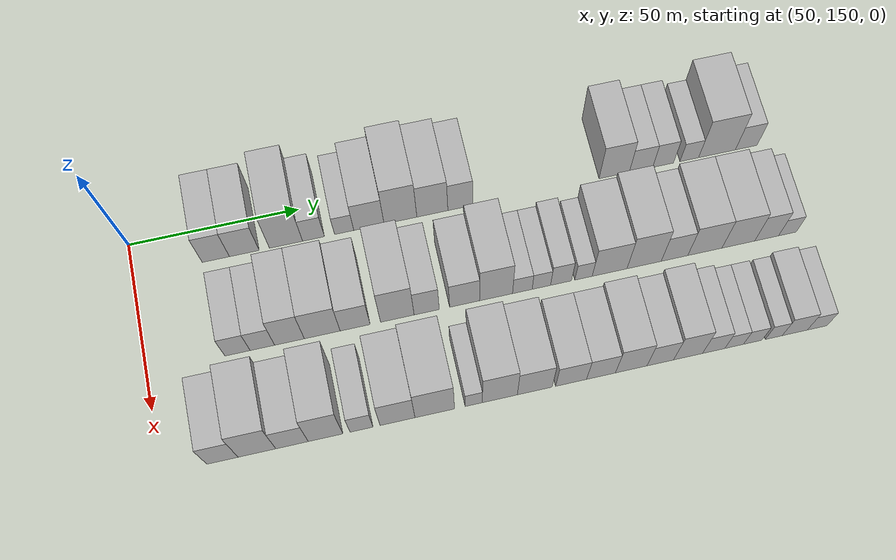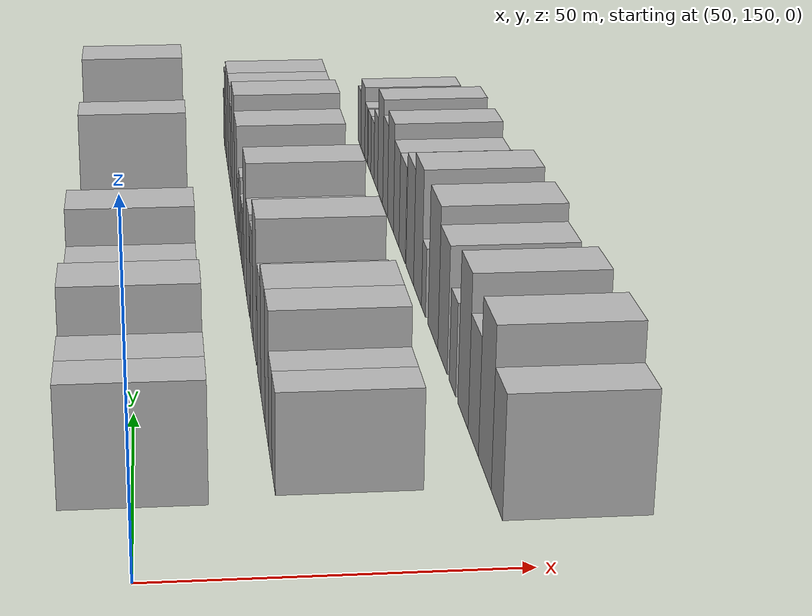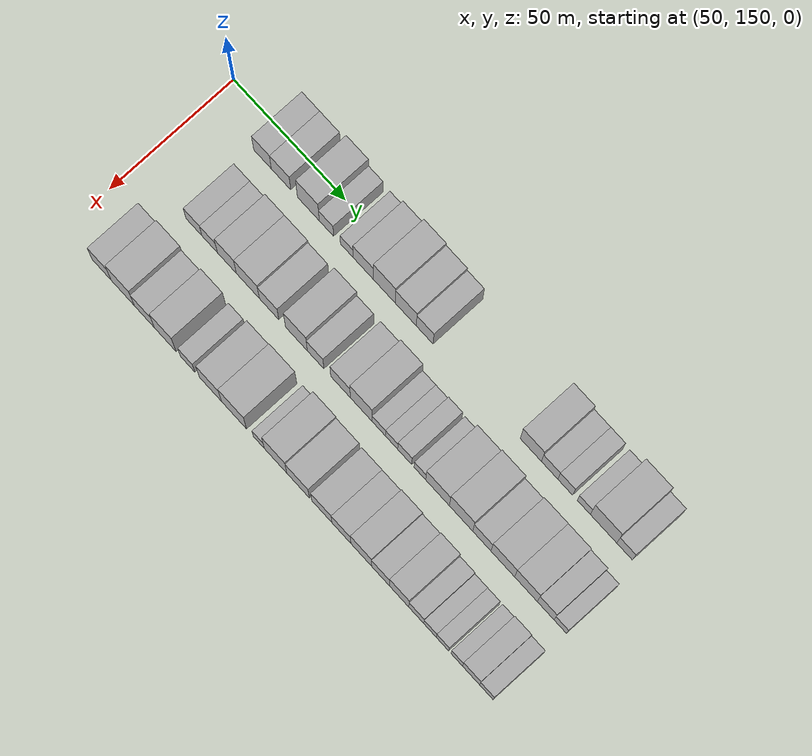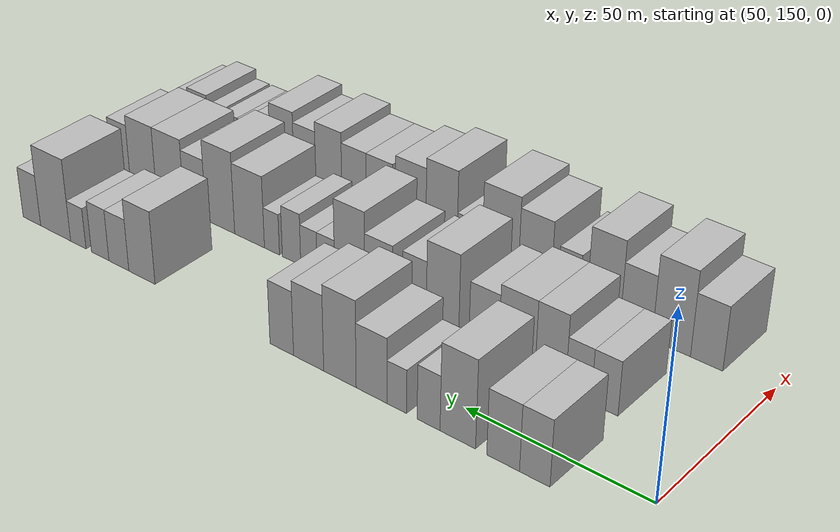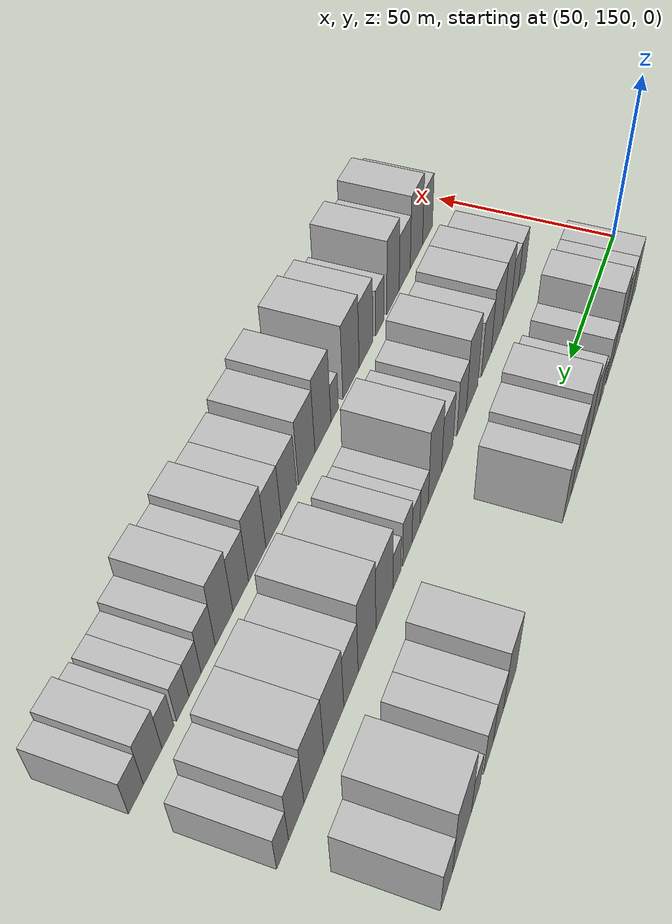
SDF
<sdf version="1.6">
 <world name="default">
  <model name="building_55">
   <static>1</static>
   <pose>50.0000 173.9923 0 0.000000 0.000000 0.000000</pose>
   <link name="link">
    <pose>0 0 9.00 0 0 0</pose>
    <collision name="collision"><geometry><box><size>20.0000 7.9048 18.0000</size></box></geometry></collision>
    <visual name="visual">
     <cast_shadows>0</cast_shadows>
     <geometry><box><size>20.0000 7.9048 18.0000</size></box></geometry>
     <material>
      <script>
       <uri>model://HANNAS_wall/materials/scripts</uri>
       <uri>model://HANNAS_wall/materials/textures</uri>
       <name>vrc/HANNAS_wall</name>
      </script>
     </material>
    </visual>
   </link>
  </model>
  <model name="building_56">
   <static>1</static>
   <pose>50.0000 182.2868 0 0.000000 0.000000 0.000000</pose>
   <link name="link">
    <pose>0 0 9.00 0 0 0</pose>
    <collision name="collision"><geometry><box><size>20.0000 8.6842 18.0000</size></box></geometry></collision>
    <visual name="visual">
     <cast_shadows>0</cast_shadows>
     <geometry><box><size>20.0000 8.6842 18.0000</size></box></geometry>
     <material>
      <script>
       <uri>model://HANNAS_wall/materials/scripts</uri>
       <uri>model://HANNAS_wall/materials/textures</uri>
       <name>vrc/HANNAS_wall</name>
      </script>
     </material>
    </visual>
   </link>
  </model>
  <model name="building_57">
   <static>1</static>
   <pose>50.0000 194.4959 0 0.000000 0.000000 0.000000</pose>
   <link name="link">
    <pose>0 0 12.00 0 0 0</pose>
    <collision name="collision"><geometry><box><size>20.0000 9.7340 24.0000</size></box></geometry></collision>
    <visual name="visual">
     <cast_shadows>0</cast_shadows>
     <geometry><box><size>20.0000 9.7340 24.0000</size></box></geometry>
     <material>
      <script>
       <uri>model://HANNAS_wall/materials/scripts</uri>
       <uri>model://HANNAS_wall/materials/textures</uri>
       <name>vrc/HANNAS_wall</name>
      </script>
     </material>
    </visual>
   </link>
  </model>
  <model name="building_58">
   <static>1</static>
   <pose>50.0000 202.5666 0 0.000000 0.000000 0.000000</pose>
   <link name="link">
    <pose>0 0 7.50 0 0 0</pose>
    <collision name="collision"><geometry><box><size>20.0000 6.4074 15.0000</size></box></geometry></collision>
    <visual name="visual">
     <cast_shadows>0</cast_shadows>
     <geometry><box><size>20.0000 6.4074 15.0000</size></box></geometry>
     <material>
      <script>
       <uri>model://HANNAS_wall/materials/scripts</uri>
       <uri>model://HANNAS_wall/materials/textures</uri>
       <name>vrc/HANNAS_wall</name>
      </script>
     </material>
    </visual>
   </link>
  </model>
  <model name="building_59">
   <static>1</static>
   <pose>50.0000 211.6004 0 0.000000 0.000000 0.000000</pose>
   <link name="link">
    <pose>0 0 6.00 0 0 0</pose>
    <collision name="collision"><geometry><box><size>20.0000 5.6602 12.0000</size></box></geometry></collision>
    <visual name="visual">
     <cast_shadows>0</cast_shadows>
     <geometry><box><size>20.0000 5.6602 12.0000</size></box></geometry>
     <material>
      <script>
       <uri>model://HANNAS_wall/materials/scripts</uri>
       <uri>model://HANNAS_wall/materials/textures</uri>
       <name>vrc/HANNAS_wall</name>
      </script>
     </material>
    </visual>
   </link>
  </model>
  <model name="building_60">
   <static>1</static>
   <pose>50.0000 218.9166 0 0.000000 0.000000 0.000000</pose>
   <link name="link">
    <pose>0 0 9.00 0 0 0</pose>
    <collision name="collision"><geometry><box><size>20.0000 8.9720 18.0000</size></box></geometry></collision>
    <visual name="visual">
     <cast_shadows>0</cast_shadows>
     <geometry><box><size>20.0000 8.9720 18.0000</size></box></geometry>
     <material>
      <script>
       <uri>model://HANNAS_wall/materials/scripts</uri>
       <uri>model://HANNAS_wall/materials/textures</uri>
       <name>vrc/HANNAS_wall</name>
      </script>
     </material>
    </visual>
   </link>
  </model>
  <model name="building_61">
   <static>1</static>
   <pose>50.0000 228.2764 0 0.000000 0.000000 0.000000</pose>
   <link name="link">
    <pose>0 0 12.00 0 0 0</pose>
    <collision name="collision"><geometry><box><size>20.0000 9.7477 24.0000</size></box></geometry></collision>
    <visual name="visual">
     <cast_shadows>0</cast_shadows>
     <geometry><box><size>20.0000 9.7477 24.0000</size></box></geometry>
     <material>
      <script>
       <uri>model://HANNAS_wall/materials/scripts</uri>
       <uri>model://HANNAS_wall/materials/textures</uri>
       <name>vrc/HANNAS_wall</name>
      </script>
     </material>
    </visual>
   </link>
  </model>
  <model name="building_62">
   <static>1</static>
   <pose>50.0000 237.7751 0 0.000000 0.000000 0.000000</pose>
   <link name="link">
    <pose>0 0 10.50 0 0 0</pose>
    <collision name="collision"><geometry><box><size>20.0000 9.2495 21.0000</size></box></geometry></collision>
    <visual name="visual">
     <cast_shadows>0</cast_shadows>
     <geometry><box><size>20.0000 9.2495 21.0000</size></box></geometry>
     <material>
      <script>
       <uri>model://HANNAS_wall/materials/scripts</uri>
       <uri>model://HANNAS_wall/materials/textures</uri>
       <name>vrc/HANNAS_wall</name>
      </script>
     </material>
    </visual>
   </link>
  </model>
  <model name="building_63">
   <static>1</static>
   <pose>50.0000 246.1008 0 0.000000 0.000000 0.000000</pose>
   <link name="link">
    <pose>0 0 9.00 0 0 0</pose>
    <collision name="collision"><geometry><box><size>20.0000 7.4020 18.0000</size></box></geometry></collision>
    <visual name="visual">
     <cast_shadows>0</cast_shadows>
     <geometry><box><size>20.0000 7.4020 18.0000</size></box></geometry>
     <material>
      <script>
       <uri>model://HANNAS_wall/materials/scripts</uri>
       <uri>model://HANNAS_wall/materials/textures</uri>
       <name>vrc/HANNAS_wall</name>
      </script>
     </material>
    </visual>
   </link>
  </model>
  <model name="building_64">
   <static>1</static>
   <pose>50.0000 292.6610 0 0.000000 0.000000 0.000000</pose>
   <link name="link">
    <pose>0 0 10.50 0 0 0</pose>
    <collision name="collision"><geometry><box><size>20.0000 9.2395 21.0000</size></box></geometry></collision>
    <visual name="visual">
     <cast_shadows>0</cast_shadows>
     <geometry><box><size>20.0000 9.2395 21.0000</size></box></geometry>
     <material>
      <script>
       <uri>model://HANNAS_wall/materials/scripts</uri>
       <uri>model://HANNAS_wall/materials/textures</uri>
       <name>vrc/HANNAS_wall</name>
      </script>
     </material>
    </visual>
   </link>
  </model>
  <model name="building_65">
   <static>1</static>
   <pose>50.0000 300.8551 0 0.000000 0.000000 0.000000</pose>
   <link name="link">
    <pose>0 0 7.50 0 0 0</pose>
    <collision name="collision"><geometry><box><size>20.0000 7.1488 15.0000</size></box></geometry></collision>
    <visual name="visual">
     <cast_shadows>0</cast_shadows>
     <geometry><box><size>20.0000 7.1488 15.0000</size></box></geometry>
     <material>
      <script>
       <uri>model://HANNAS_wall/materials/scripts</uri>
       <uri>model://HANNAS_wall/materials/textures</uri>
       <name>vrc/HANNAS_wall</name>
      </script>
     </material>
    </visual>
   </link>
  </model>
  <model name="building_66">
   <static>1</static>
   <pose>50.0000 307.6309 0 0.000000 0.000000 0.000000</pose>
   <link name="link">
    <pose>0 0 7.50 0 0 0</pose>
    <collision name="collision"><geometry><box><size>20.0000 6.4028 15.0000</size></box></geometry></collision>
    <visual name="visual">
     <cast_shadows>0</cast_shadows>
     <geometry><box><size>20.0000 6.4028 15.0000</size></box></geometry>
     <material>
      <script>
       <uri>model://HANNAS_wall/materials/scripts</uri>
       <uri>model://HANNAS_wall/materials/textures</uri>
       <name>vrc/HANNAS_wall</name>
      </script>
     </material>
    </visual>
   </link>
  </model>
  <model name="building_67">
   <static>1</static>
   <pose>50.0000 315.6937 0 0.000000 0.000000 0.000000</pose>
   <link name="link">
    <pose>0 0 6.00 0 0 0</pose>
    <collision name="collision"><geometry><box><size>20.0000 5.7228 12.0000</size></box></geometry></collision>
    <visual name="visual">
     <cast_shadows>0</cast_shadows>
     <geometry><box><size>20.0000 5.7228 12.0000</size></box></geometry>
     <material>
      <script>
       <uri>model://HANNAS_wall/materials/scripts</uri>
       <uri>model://HANNAS_wall/materials/textures</uri>
       <name>vrc/HANNAS_wall</name>
      </script>
     </material>
    </visual>
   </link>
  </model>
  <model name="building_68">
   <static>1</static>
   <pose>50.0000 324.2581 0 0.000000 0.000000 0.000000</pose>
   <link name="link">
    <pose>0 0 12.00 0 0 0</pose>
    <collision name="collision"><geometry><box><size>20.0000 11.4061 24.0000</size></box></geometry></collision>
    <visual name="visual">
     <cast_shadows>0</cast_shadows>
     <geometry><box><size>20.0000 11.4061 24.0000</size></box></geometry>
     <material>
      <script>
       <uri>model://HANNAS_wall/materials/scripts</uri>
       <uri>model://HANNAS_wall/materials/textures</uri>
       <name>vrc/HANNAS_wall</name>
      </script>
     </material>
    </visual>
   </link>
  </model>
  <model name="building_69">
   <static>1</static>
   <pose>50.0000 333.3432 0 0.000000 0.000000 0.000000</pose>
   <link name="link">
    <pose>0 0 7.50 0 0 0</pose>
    <collision name="collision"><geometry><box><size>20.0000 6.7641 15.0000</size></box></geometry></collision>
    <visual name="visual">
     <cast_shadows>0</cast_shadows>
     <geometry><box><size>20.0000 6.7641 15.0000</size></box></geometry>
     <material>
      <script>
       <uri>model://HANNAS_wall/materials/scripts</uri>
       <uri>model://HANNAS_wall/materials/textures</uri>
       <name>vrc/HANNAS_wall</name>
      </script>
     </material>
    </visual>
   </link>
  </model>
  <model name="building_131">
   <static>1</static>
   <pose>79.0000 175.6493 0 0.000000 0.000000 0.000000</pose>
   <link name="link">
    <pose>0 0 7.50 0 0 0</pose>
    <collision name="collision"><geometry><box><size>20.0000 7.1329 15.0000</size></box></geometry></collision>
    <visual name="visual">
     <cast_shadows>0</cast_shadows>
     <geometry><box><size>20.0000 7.1329 15.0000</size></box></geometry>
     <material>
      <script>
       <uri>model://HANNAS_wall/materials/scripts</uri>
       <uri>model://HANNAS_wall/materials/textures</uri>
       <name>vrc/HANNAS_wall</name>
      </script>
     </material>
    </visual>
   </link>
  </model>
  <model name="building_132">
   <static>1</static>
   <pose>79.0000 182.7060 0 0.000000 0.000000 0.000000</pose>
   <link name="link">
    <pose>0 0 7.50 0 0 0</pose>
    <collision name="collision"><geometry><box><size>20.0000 6.9805 15.0000</size></box></geometry></collision>
    <visual name="visual">
     <cast_shadows>0</cast_shadows>
     <geometry><box><size>20.0000 6.9805 15.0000</size></box></geometry>
     <material>
      <script>
       <uri>model://HANNAS_wall/materials/scripts</uri>
       <uri>model://HANNAS_wall/materials/textures</uri>
       <name>vrc/HANNAS_wall</name>
      </script>
     </material>
    </visual>
   </link>
  </model>
  <model name="building_133">
   <static>1</static>
   <pose>79.0000 190.4262 0 0.000000 0.000000 0.000000</pose>
   <link name="link">
    <pose>0 0 10.50 0 0 0</pose>
    <collision name="collision"><geometry><box><size>20.0000 8.4598 21.0000</size></box></geometry></collision>
    <visual name="visual">
     <cast_shadows>0</cast_shadows>
     <geometry><box><size>20.0000 8.4598 21.0000</size></box></geometry>
     <material>
      <script>
       <uri>model://HANNAS_wall/materials/scripts</uri>
       <uri>model://HANNAS_wall/materials/textures</uri>
       <name>vrc/HANNAS_wall</name>
      </script>
     </material>
    </visual>
   </link>
  </model>
  <model name="building_134">
   <static>1</static>
   <pose>79.0000 199.7862 0 0.000000 0.000000 0.000000</pose>
   <link name="link">
    <pose>0 0 10.50 0 0 0</pose>
    <collision name="collision"><geometry><box><size>20.0000 10.2602 21.0000</size></box></geometry></collision>
    <visual name="visual">
     <cast_shadows>0</cast_shadows>
     <geometry><box><size>20.0000 10.2602 21.0000</size></box></geometry>
     <material>
      <script>
       <uri>model://HANNAS_wall/materials/scripts</uri>
       <uri>model://HANNAS_wall/materials/textures</uri>
       <name>vrc/HANNAS_wall</name>
      </script>
     </material>
    </visual>
   </link>
  </model>
  <model name="building_135">
   <static>1</static>
   <pose>79.0000 209.2222 0 0.000000 0.000000 0.000000</pose>
   <link name="link">
    <pose>0 0 9.00 0 0 0</pose>
    <collision name="collision"><geometry><box><size>20.0000 8.6118 18.0000</size></box></geometry></collision>
    <visual name="visual">
     <cast_shadows>0</cast_shadows>
     <geometry><box><size>20.0000 8.6118 18.0000</size></box></geometry>
     <material>
      <script>
       <uri>model://HANNAS_wall/materials/scripts</uri>
       <uri>model://HANNAS_wall/materials/textures</uri>
       <name>vrc/HANNAS_wall</name>
      </script>
     </material>
    </visual>
   </link>
  </model>
  <model name="building_136">
   <static>1</static>
   <pose>79.0000 221.3750 0 0.000000 0.000000 0.000000</pose>
   <link name="link">
    <pose>0 0 12.00 0 0 0</pose>
    <collision name="collision"><geometry><box><size>20.0000 9.6940 24.0000</size></box></geometry></collision>
    <visual name="visual">
     <cast_shadows>0</cast_shadows>
     <geometry><box><size>20.0000 9.6940 24.0000</size></box></geometry>
     <material>
      <script>
       <uri>model://HANNAS_wall/materials/scripts</uri>
       <uri>model://HANNAS_wall/materials/textures</uri>
       <name>vrc/HANNAS_wall</name>
      </script>
     </material>
    </visual>
   </link>
  </model>
  <model name="building_137">
   <static>1</static>
   <pose>79.0000 229.8721 0 0.000000 0.000000 0.000000</pose>
   <link name="link">
    <pose>0 0 9.00 0 0 0</pose>
    <collision name="collision"><geometry><box><size>20.0000 7.3002 18.0000</size></box></geometry></collision>
    <visual name="visual">
     <cast_shadows>0</cast_shadows>
     <geometry><box><size>20.0000 7.3002 18.0000</size></box></geometry>
     <material>
      <script>
       <uri>model://HANNAS_wall/materials/scripts</uri>
       <uri>model://HANNAS_wall/materials/textures</uri>
       <name>vrc/HANNAS_wall</name>
      </script>
     </material>
    </visual>
   </link>
  </model>
  <model name="building_138">
   <static>1</static>
   <pose>79.0000 240.8818 0 0.000000 0.000000 0.000000</pose>
   <link name="link">
    <pose>0 0 9.00 0 0 0</pose>
    <collision name="collision"><geometry><box><size>20.0000 8.7191 18.0000</size></box></geometry></collision>
    <visual name="visual">
     <cast_shadows>0</cast_shadows>
     <geometry><box><size>20.0000 8.7191 18.0000</size></box></geometry>
     <material>
      <script>
       <uri>model://HANNAS_wall/materials/scripts</uri>
       <uri>model://HANNAS_wall/materials/textures</uri>
       <name>vrc/HANNAS_wall</name>
      </script>
     </material>
    </visual>
   </link>
  </model>
  <model name="building_139">
   <static>1</static>
   <pose>79.0000 250.0585 0 0.000000 0.000000 0.000000</pose>
   <link name="link">
    <pose>0 0 12.00 0 0 0</pose>
    <collision name="collision"><geometry><box><size>20.0000 9.6342 24.0000</size></box></geometry></collision>
    <visual name="visual">
     <cast_shadows>0</cast_shadows>
     <geometry><box><size>20.0000 9.6342 24.0000</size></box></geometry>
     <material>
      <script>
       <uri>model://HANNAS_wall/materials/scripts</uri>
       <uri>model://HANNAS_wall/materials/textures</uri>
       <name>vrc/HANNAS_wall</name>
      </script>
     </material>
    </visual>
   </link>
  </model>
  <model name="building_140">
   <static>1</static>
   <pose>79.0000 257.7534 0 0.000000 0.000000 0.000000</pose>
   <link name="link">
    <pose>0 0 6.00 0 0 0</pose>
    <collision name="collision"><geometry><box><size>20.0000 5.7557 12.0000</size></box></geometry></collision>
    <visual name="visual">
     <cast_shadows>0</cast_shadows>
     <geometry><box><size>20.0000 5.7557 12.0000</size></box></geometry>
     <material>
      <script>
       <uri>model://HANNAS_wall/materials/scripts</uri>
       <uri>model://HANNAS_wall/materials/textures</uri>
       <name>vrc/HANNAS_wall</name>
      </script>
     </material>
    </visual>
   </link>
  </model>
  <model name="building_141">
   <static>1</static>
   <pose>79.0000 263.3438 0 0.000000 0.000000 0.000000</pose>
   <link name="link">
    <pose>0 0 6.00 0 0 0</pose>
    <collision name="collision"><geometry><box><size>20.0000 5.4251 12.0000</size></box></geometry></collision>
    <visual name="visual">
     <cast_shadows>0</cast_shadows>
     <geometry><box><size>20.0000 5.4251 12.0000</size></box></geometry>
     <material>
      <script>
       <uri>model://HANNAS_wall/materials/scripts</uri>
       <uri>model://HANNAS_wall/materials/textures</uri>
       <name>vrc/HANNAS_wall</name>
      </script>
     </material>
    </visual>
   </link>
  </model>
  <model name="building_142">
   <static>1</static>
   <pose>79.0000 269.1392 0 0.000000 0.000000 0.000000</pose>
   <link name="link">
    <pose>0 0 7.50 0 0 0</pose>
    <collision name="collision"><geometry><box><size>20.0000 6.1656 15.0000</size></box></geometry></collision>
    <visual name="visual">
     <cast_shadows>0</cast_shadows>
     <geometry><box><size>20.0000 6.1656 15.0000</size></box></geometry>
     <material>
      <script>
       <uri>model://HANNAS_wall/materials/scripts</uri>
       <uri>model://HANNAS_wall/materials/textures</uri>
       <name>vrc/HANNAS_wall</name>
      </script>
     </material>
    </visual>
   </link>
  </model>
  <model name="building_143">
   <static>1</static>
   <pose>79.0000 275.7803 0 0.000000 0.000000 0.000000</pose>
   <link name="link">
    <pose>0 0 6.00 0 0 0</pose>
    <collision name="collision"><geometry><box><size>20.0000 5.1166 12.0000</size></box></geometry></collision>
    <visual name="visual">
     <cast_shadows>0</cast_shadows>
     <geometry><box><size>20.0000 5.1166 12.0000</size></box></geometry>
     <material>
      <script>
       <uri>model://HANNAS_wall/materials/scripts</uri>
       <uri>model://HANNAS_wall/materials/textures</uri>
       <name>vrc/HANNAS_wall</name>
      </script>
     </material>
    </visual>
   </link>
  </model>
  <model name="building_144">
   <static>1</static>
   <pose>79.0000 283.5110 0 0.000000 0.000000 0.000000</pose>
   <link name="link">
    <pose>0 0 10.50 0 0 0</pose>
    <collision name="collision"><geometry><box><size>20.0000 10.3447 21.0000</size></box></geometry></collision>
    <visual name="visual">
     <cast_shadows>0</cast_shadows>
     <geometry><box><size>20.0000 10.3447 21.0000</size></box></geometry>
     <material>
      <script>
       <uri>model://HANNAS_wall/materials/scripts</uri>
       <uri>model://HANNAS_wall/materials/textures</uri>
       <name>vrc/HANNAS_wall</name>
      </script>
     </material>
    </visual>
   </link>
  </model>
  <model name="building_145">
   <static>1</static>
   <pose>79.0000 293.7892 0 0.000000 0.000000 0.000000</pose>
   <link name="link">
    <pose>0 0 12.00 0 0 0</pose>
    <collision name="collision"><geometry><box><size>20.0000 10.2119 24.0000</size></box></geometry></collision>
    <visual name="visual">
     <cast_shadows>0</cast_shadows>
     <geometry><box><size>20.0000 10.2119 24.0000</size></box></geometry>
     <material>
      <script>
       <uri>model://HANNAS_wall/materials/scripts</uri>
       <uri>model://HANNAS_wall/materials/textures</uri>
       <name>vrc/HANNAS_wall</name>
      </script>
     </material>
    </visual>
   </link>
  </model>
  <model name="building_146">
   <static>1</static>
   <pose>79.0000 302.8569 0 0.000000 0.000000 0.000000</pose>
   <link name="link">
    <pose>0 0 9.00 0 0 0</pose>
    <collision name="collision"><geometry><box><size>20.0000 7.9234 18.0000</size></box></geometry></collision>
    <visual name="visual">
     <cast_shadows>0</cast_shadows>
     <geometry><box><size>20.0000 7.9234 18.0000</size></box></geometry>
     <material>
      <script>
       <uri>model://HANNAS_wall/materials/scripts</uri>
       <uri>model://HANNAS_wall/materials/textures</uri>
       <name>vrc/HANNAS_wall</name>
      </script>
     </material>
    </visual>
   </link>
  </model>
  <model name="building_147">
   <static>1</static>
   <pose>79.0000 311.9567 0 0.000000 0.000000 0.000000</pose>
   <link name="link">
    <pose>0 0 10.50 0 0 0</pose>
    <collision name="collision"><geometry><box><size>20.0000 10.2763 21.0000</size></box></geometry></collision>
    <visual name="visual">
     <cast_shadows>0</cast_shadows>
     <geometry><box><size>20.0000 10.2763 21.0000</size></box></geometry>
     <material>
      <script>
       <uri>model://HANNAS_wall/materials/scripts</uri>
       <uri>model://HANNAS_wall/materials/textures</uri>
       <name>vrc/HANNAS_wall</name>
      </script>
     </material>
    </visual>
   </link>
  </model>
  <model name="building_148">
   <static>1</static>
   <pose>79.0000 322.0360 0 0.000000 0.000000 0.000000</pose>
   <link name="link">
    <pose>0 0 10.50 0 0 0</pose>
    <collision name="collision"><geometry><box><size>20.0000 9.8823 21.0000</size></box></geometry></collision>
    <visual name="visual">
     <cast_shadows>0</cast_shadows>
     <geometry><box><size>20.0000 9.8823 21.0000</size></box></geometry>
     <material>
      <script>
       <uri>model://HANNAS_wall/materials/scripts</uri>
       <uri>model://HANNAS_wall/materials/textures</uri>
       <name>vrc/HANNAS_wall</name>
      </script>
     </material>
    </visual>
   </link>
  </model>
  <model name="building_149">
   <static>1</static>
   <pose>79.0000 330.5878 0 0.000000 0.000000 0.000000</pose>
   <link name="link">
    <pose>0 0 9.00 0 0 0</pose>
    <collision name="collision"><geometry><box><size>20.0000 7.2213 18.0000</size></box></geometry></collision>
    <visual name="visual">
     <cast_shadows>0</cast_shadows>
     <geometry><box><size>20.0000 7.2213 18.0000</size></box></geometry>
     <material>
      <script>
       <uri>model://HANNAS_wall/materials/scripts</uri>
       <uri>model://HANNAS_wall/materials/textures</uri>
       <name>vrc/HANNAS_wall</name>
      </script>
     </material>
    </visual>
   </link>
  </model>
  <model name="building_150">
   <static>1</static>
   <pose>79.0000 336.8859 0 0.000000 0.000000 0.000000</pose>
   <link name="link">
    <pose>0 0 6.00 0 0 0</pose>
    <collision name="collision"><geometry><box><size>20.0000 5.3750 12.0000</size></box></geometry></collision>
    <visual name="visual">
     <cast_shadows>0</cast_shadows>
     <geometry><box><size>20.0000 5.3750 12.0000</size></box></geometry>
     <material>
      <script>
       <uri>model://HANNAS_wall/materials/scripts</uri>
       <uri>model://HANNAS_wall/materials/textures</uri>
       <name>vrc/HANNAS_wall</name>
      </script>
     </material>
    </visual>
   </link>
  </model>
  <model name="building_206">
   <static>1</static>
   <pose>108.0000 166.8557 0 0.000000 0.000000 0.000000</pose>
   <link name="link">
    <pose>0 0 9.00 0 0 0</pose>
    <collision name="collision"><geometry><box><size>20.0000 8.5937 18.0000</size></box></geometry></collision>
    <visual name="visual">
     <cast_shadows>0</cast_shadows>
     <geometry><box><size>20.0000 8.5937 18.0000</size></box></geometry>
     <material>
      <script>
       <uri>model://HANNAS_wall/materials/scripts</uri>
       <uri>model://HANNAS_wall/materials/textures</uri>
       <name>vrc/HANNAS_wall</name>
      </script>
     </material>
    </visual>
   </link>
  </model>
  <model name="building_207">
   <static>1</static>
   <pose>108.0000 176.3578 0 0.000000 0.000000 0.000000</pose>
   <link name="link">
    <pose>0 0 12.00 0 0 0</pose>
    <collision name="collision"><geometry><box><size>20.0000 10.4105 24.0000</size></box></geometry></collision>
    <visual name="visual">
     <cast_shadows>0</cast_shadows>
     <geometry><box><size>20.0000 10.4105 24.0000</size></box></geometry>
     <material>
      <script>
       <uri>model://HANNAS_wall/materials/scripts</uri>
       <uri>model://HANNAS_wall/materials/textures</uri>
       <name>vrc/HANNAS_wall</name>
      </script>
     </material>
    </visual>
   </link>
  </model>
  <model name="building_208">
   <static>1</static>
   <pose>108.0000 186.0483 0 0.000000 0.000000 0.000000</pose>
   <link name="link">
    <pose>0 0 9.00 0 0 0</pose>
    <collision name="collision"><geometry><box><size>20.0000 8.9705 18.0000</size></box></geometry></collision>
    <visual name="visual">
     <cast_shadows>0</cast_shadows>
     <geometry><box><size>20.0000 8.9705 18.0000</size></box></geometry>
     <material>
      <script>
       <uri>model://HANNAS_wall/materials/scripts</uri>
       <uri>model://HANNAS_wall/materials/textures</uri>
       <name>vrc/HANNAS_wall</name>
      </script>
     </material>
    </visual>
   </link>
  </model>
  <model name="building_209">
   <static>1</static>
   <pose>108.0000 195.3471 0 0.000000 0.000000 0.000000</pose>
   <link name="link">
    <pose>0 0 12.00 0 0 0</pose>
    <collision name="collision"><geometry><box><size>20.0000 9.6270 24.0000</size></box></geometry></collision>
    <visual name="visual">
     <cast_shadows>0</cast_shadows>
     <geometry><box><size>20.0000 9.6270 24.0000</size></box></geometry>
     <material>
      <script>
       <uri>model://HANNAS_wall/materials/scripts</uri>
       <uri>model://HANNAS_wall/materials/textures</uri>
       <name>vrc/HANNAS_wall</name>
      </script>
     </material>
    </visual>
   </link>
  </model>
  <model name="building_210">
   <static>1</static>
   <pose>108.0000 205.3694 0 0.000000 0.000000 0.000000</pose>
   <link name="link">
    <pose>0 0 7.50 0 0 0</pose>
    <collision name="collision"><geometry><box><size>20.0000 6.4176 15.0000</size></box></geometry></collision>
    <visual name="visual">
     <cast_shadows>0</cast_shadows>
     <geometry><box><size>20.0000 6.4176 15.0000</size></box></geometry>
     <material>
      <script>
       <uri>model://HANNAS_wall/materials/scripts</uri>
       <uri>model://HANNAS_wall/materials/textures</uri>
       <name>vrc/HANNAS_wall</name>
      </script>
     </material>
    </visual>
   </link>
  </model>
  <model name="building_211">
   <static>1</static>
   <pose>108.0000 215.4752 0 0.000000 0.000000 0.000000</pose>
   <link name="link">
    <pose>0 0 10.50 0 0 0</pose>
    <collision name="collision"><geometry><box><size>20.0000 9.7940 21.0000</size></box></geometry></collision>
    <visual name="visual">
     <cast_shadows>0</cast_shadows>
     <geometry><box><size>20.0000 9.7940 21.0000</size></box></geometry>
     <material>
      <script>
       <uri>model://HANNAS_wall/materials/scripts</uri>
       <uri>model://HANNAS_wall/materials/textures</uri>
       <name>vrc/HANNAS_wall</name>
      </script>
     </material>
    </visual>
   </link>
  </model>
  <model name="building_212">
   <static>1</static>
   <pose>108.0000 225.9453 0 0.000000 0.000000 0.000000</pose>
   <link name="link">
    <pose>0 0 12.00 0 0 0</pose>
    <collision name="collision"><geometry><box><size>20.0000 11.1463 24.0000</size></box></geometry></collision>
    <visual name="visual">
     <cast_shadows>0</cast_shadows>
     <geometry><box><size>20.0000 11.1463 24.0000</size></box></geometry>
     <material>
      <script>
       <uri>model://HANNAS_wall/materials/scripts</uri>
       <uri>model://HANNAS_wall/materials/textures</uri>
       <name>vrc/HANNAS_wall</name>
      </script>
     </material>
    </visual>
   </link>
  </model>
  <model name="building_213">
   <static>1</static>
   <pose>108.0000 236.9356 0 0.000000 0.000000 0.000000</pose>
   <link name="link">
    <pose>0 0 6.00 0 0 0</pose>
    <collision name="collision"><geometry><box><size>20.0000 4.8342 12.0000</size></box></geometry></collision>
    <visual name="visual">
     <cast_shadows>0</cast_shadows>
     <geometry><box><size>20.0000 4.8342 12.0000</size></box></geometry>
     <material>
      <script>
       <uri>model://HANNAS_wall/materials/scripts</uri>
       <uri>model://HANNAS_wall/materials/textures</uri>
       <name>vrc/HANNAS_wall</name>
      </script>
     </material>
    </visual>
   </link>
  </model>
  <model name="building_214">
   <static>1</static>
   <pose>108.0000 244.3381 0 0.000000 0.000000 0.000000</pose>
   <link name="link">
    <pose>0 0 12.00 0 0 0</pose>
    <collision name="collision"><geometry><box><size>20.0000 9.9708 24.0000</size></box></geometry></collision>
    <visual name="visual">
     <cast_shadows>0</cast_shadows>
     <geometry><box><size>20.0000 9.9708 24.0000</size></box></geometry>
     <material>
      <script>
       <uri>model://HANNAS_wall/materials/scripts</uri>
       <uri>model://HANNAS_wall/materials/textures</uri>
       <name>vrc/HANNAS_wall</name>
      </script>
     </material>
    </visual>
   </link>
  </model>
  <model name="building_215">
   <static>1</static>
   <pose>108.0000 254.2959 0 0.000000 0.000000 0.000000</pose>
   <link name="link">
    <pose>0 0 10.50 0 0 0</pose>
    <collision name="collision"><geometry><box><size>20.0000 9.9449 21.0000</size></box></geometry></collision>
    <visual name="visual">
     <cast_shadows>0</cast_shadows>
     <geometry><box><size>20.0000 9.9449 21.0000</size></box></geometry>
     <material>
      <script>
       <uri>model://HANNAS_wall/materials/scripts</uri>
       <uri>model://HANNAS_wall/materials/textures</uri>
       <name>vrc/HANNAS_wall</name>
      </script>
     </material>
    </visual>
   </link>
  </model>
  <model name="building_216">
   <static>1</static>
   <pose>108.0000 264.7048 0 0.000000 0.000000 0.000000</pose>
   <link name="link">
    <pose>0 0 9.00 0 0 0</pose>
    <collision name="collision"><geometry><box><size>20.0000 8.8729 18.0000</size></box></geometry></collision>
    <visual name="visual">
     <cast_shadows>0</cast_shadows>
     <geometry><box><size>20.0000 8.8729 18.0000</size></box></geometry>
     <material>
      <script>
       <uri>model://HANNAS_wall/materials/scripts</uri>
       <uri>model://HANNAS_wall/materials/textures</uri>
       <name>vrc/HANNAS_wall</name>
      </script>
     </material>
    </visual>
   </link>
  </model>
  <model name="building_217">
   <static>1</static>
   <pose>108.0000 273.2899 0 0.000000 0.000000 0.000000</pose>
   <link name="link">
    <pose>0 0 9.00 0 0 0</pose>
    <collision name="collision"><geometry><box><size>20.0000 8.2973 18.0000</size></box></geometry></collision>
    <visual name="visual">
     <cast_shadows>0</cast_shadows>
     <geometry><box><size>20.0000 8.2973 18.0000</size></box></geometry>
     <material>
      <script>
       <uri>model://HANNAS_wall/materials/scripts</uri>
       <uri>model://HANNAS_wall/materials/textures</uri>
       <name>vrc/HANNAS_wall</name>
      </script>
     </material>
    </visual>
   </link>
  </model>
  <model name="building_218">
   <static>1</static>
   <pose>108.0000 281.9944 0 0.000000 0.000000 0.000000</pose>
   <link name="link">
    <pose>0 0 10.50 0 0 0</pose>
    <collision name="collision"><geometry><box><size>20.0000 9.1118 21.0000</size></box></geometry></collision>
    <visual name="visual">
     <cast_shadows>0</cast_shadows>
     <geometry><box><size>20.0000 9.1118 21.0000</size></box></geometry>
     <material>
      <script>
       <uri>model://HANNAS_wall/materials/scripts</uri>
       <uri>model://HANNAS_wall/materials/textures</uri>
       <name>vrc/HANNAS_wall</name>
      </script>
     </material>
    </visual>
   </link>
  </model>
  <model name="building_219">
   <static>1</static>
   <pose>108.0000 290.4186 0 0.000000 0.000000 0.000000</pose>
   <link name="link">
    <pose>0 0 9.00 0 0 0</pose>
    <collision name="collision"><geometry><box><size>20.0000 7.7365 18.0000</size></box></geometry></collision>
    <visual name="visual">
     <cast_shadows>0</cast_shadows>
     <geometry><box><size>20.0000 7.7365 18.0000</size></box></geometry>
     <material>
      <script>
       <uri>model://HANNAS_wall/materials/scripts</uri>
       <uri>model://HANNAS_wall/materials/textures</uri>
       <name>vrc/HANNAS_wall</name>
      </script>
     </material>
    </visual>
   </link>
  </model>
  <model name="building_220">
   <static>1</static>
   <pose>108.0000 298.5069 0 0.000000 0.000000 0.000000</pose>
   <link name="link">
    <pose>0 0 10.50 0 0 0</pose>
    <collision name="collision"><geometry><box><size>20.0000 8.4400 21.0000</size></box></geometry></collision>
    <visual name="visual">
     <cast_shadows>0</cast_shadows>
     <geometry><box><size>20.0000 8.4400 21.0000</size></box></geometry>
     <material>
      <script>
       <uri>model://HANNAS_wall/materials/scripts</uri>
       <uri>model://HANNAS_wall/materials/textures</uri>
       <name>vrc/HANNAS_wall</name>
      </script>
     </material>
    </visual>
   </link>
  </model>
  <model name="building_221">
   <static>1</static>
   <pose>108.0000 305.9869 0 0.000000 0.000000 0.000000</pose>
   <link name="link">
    <pose>0 0 7.50 0 0 0</pose>
    <collision name="collision"><geometry><box><size>20.0000 6.5200 15.0000</size></box></geometry></collision>
    <visual name="visual">
     <cast_shadows>0</cast_shadows>
     <geometry><box><size>20.0000 6.5200 15.0000</size></box></geometry>
     <material>
      <script>
       <uri>model://HANNAS_wall/materials/scripts</uri>
       <uri>model://HANNAS_wall/materials/textures</uri>
       <name>vrc/HANNAS_wall</name>
      </script>
     </material>
    </visual>
   </link>
  </model>
  <model name="building_222">
   <static>1</static>
   <pose>108.0000 311.9762 0 0.000000 0.000000 0.000000</pose>
   <link name="link">
    <pose>0 0 6.00 0 0 0</pose>
    <collision name="collision"><geometry><box><size>20.0000 5.4586 12.0000</size></box></geometry></collision>
    <visual name="visual">
     <cast_shadows>0</cast_shadows>
     <geometry><box><size>20.0000 5.4586 12.0000</size></box></geometry>
     <material>
      <script>
       <uri>model://HANNAS_wall/materials/scripts</uri>
       <uri>model://HANNAS_wall/materials/textures</uri>
       <name>vrc/HANNAS_wall</name>
      </script>
     </material>
    </visual>
   </link>
  </model>
  <model name="building_223">
   <static>1</static>
   <pose>108.0000 317.4067 0 0.000000 0.000000 0.000000</pose>
   <link name="link">
    <pose>0 0 6.00 0 0 0</pose>
    <collision name="collision"><geometry><box><size>20.0000 5.4023 12.0000</size></box></geometry></collision>
    <visual name="visual">
     <cast_shadows>0</cast_shadows>
     <geometry><box><size>20.0000 5.4023 12.0000</size></box></geometry>
     <material>
      <script>
       <uri>model://HANNAS_wall/materials/scripts</uri>
       <uri>model://HANNAS_wall/materials/textures</uri>
       <name>vrc/HANNAS_wall</name>
      </script>
     </material>
    </visual>
   </link>
  </model>
  <model name="building_224">
   <static>1</static>
   <pose>108.0000 323.6013 0 0.000000 0.000000 0.000000</pose>
   <link name="link">
    <pose>0 0 6.00 0 0 0</pose>
    <collision name="collision"><geometry><box><size>20.0000 4.9870 12.0000</size></box></geometry></collision>
    <visual name="visual">
     <cast_shadows>0</cast_shadows>
     <geometry><box><size>20.0000 4.9870 12.0000</size></box></geometry>
     <material>
      <script>
       <uri>model://HANNAS_wall/materials/scripts</uri>
       <uri>model://HANNAS_wall/materials/textures</uri>
       <name>vrc/HANNAS_wall</name>
      </script>
     </material>
    </visual>
   </link>
  </model>
  <model name="building_225">
   <static>1</static>
   <pose>108.0000 329.8055 0 0.000000 0.000000 0.000000</pose>
   <link name="link">
    <pose>0 0 7.50 0 0 0</pose>
    <collision name="collision"><geometry><box><size>20.0000 7.4214 15.0000</size></box></geometry></collision>
    <visual name="visual">
     <cast_shadows>0</cast_shadows>
     <geometry><box><size>20.0000 7.4214 15.0000</size></box></geometry>
     <material>
      <script>
       <uri>model://HANNAS_wall/materials/scripts</uri>
       <uri>model://HANNAS_wall/materials/textures</uri>
       <name>vrc/HANNAS_wall</name>
      </script>
     </material>
    </visual>
   </link>
  </model>
  <model name="building_226">
   <static>1</static>
   <pose>108.0000 336.4376 0 0.000000 0.000000 0.000000</pose>
   <link name="link">
    <pose>0 0 6.00 0 0 0</pose>
    <collision name="collision"><geometry><box><size>20.0000 5.8427 12.0000</size></box></geometry></collision>
    <visual name="visual">
     <cast_shadows>0</cast_shadows>
     <geometry><box><size>20.0000 5.8427 12.0000</size></box></geometry>
     <material>
      <script>
       <uri>model://HANNAS_wall/materials/scripts</uri>
       <uri>model://HANNAS_wall/materials/textures</uri>
       <name>vrc/HANNAS_wall</name>
      </script>
     </material>
    </visual>
   </link>
  </model>
 </world>
</sdf>
